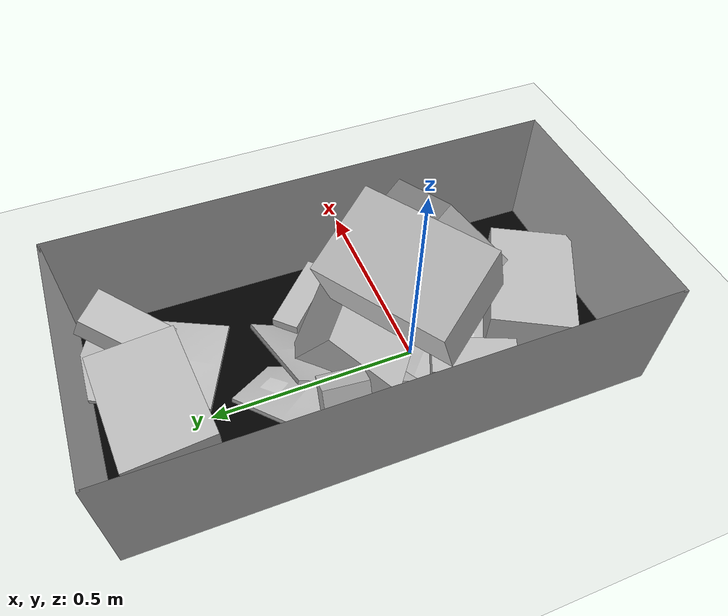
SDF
<sdf version="1.7">
 <world name="default">
  <model name="ground_plane">
   <static>1</static>
   <link name="link">
    <collision name="collision">
     <geometry><plane><normal>0 0 1</normal><size>100 100</size></plane></geometry>
     <surface><friction><ode><mu>100</mu><mu2>50</mu2></ode></friction></surface>
    </collision>
    <visual name="visual">
     <cast_shadows>0</cast_shadows>
     <geometry><plane><normal>0 0 1</normal><size>100 100</size></plane></geometry>
     <material>
      <script><uri>file://media/materials/scripts/gazebo.material</uri><name>Gazebo/Grey</name></script>
     </material>
    </visual>
   </link>
  </model>
  <model name="trolley">
   <static>1</static>
   <link name="link">
    <inertial>
     <mass>10</mass>
     <inertia><ixy>0</ixy><ixz>0</ixz><iyz>0</iyz><ixx>0.05288</ixx><iyy>0.05288</iyy><izz>0.09132</izz></inertia>
    </inertial>
    <collision name="collision">
     <geometry><mesh><uri>model://trolley/meshes/trolley.dae</uri></mesh></geometry>
    </collision>
    <visual name="visual">
     <geometry><mesh><uri>model://trolley/meshes/trolley.dae</uri><scale>1 1 1</scale></mesh></geometry>
     <meta><layer>1</layer></meta>
    </visual>
   </link>
   <pose>0.051238 0.131331 0.154361 0.000575 6e-06 3.13104</pose>
  </model>
  <model name="flyer_box_1">
   <link name="link">
    <inertial>
     <mass>1</mass>
     <inertia><ixy>0</ixy><ixz>0</ixz><iyz>0</iyz><ixx>0.05288</ixx><iyy>0.05288</iyy><izz>0.09132</izz></inertia>
    </inertial>
    <collision name="collision">
     <geometry><mesh><uri>model://flyer_boxes/meshes/flyer.dae</uri></mesh></geometry>
    </collision>
    <visual name="visual">
     <geometry><mesh><uri>model://flyer_boxes/meshes/flyer.dae</uri><scale>1 1 1</scale></mesh></geometry>
     <meta><layer>1</layer></meta>
    </visual>
   </link>
   <pose>-0.065278 0.544205 0.189091 0.086525 -0.04826 1.14085</pose>
  </model>
  <model name="medium_box_1">
   <link name="link">
    <inertial>
     <mass>1</mass>
     <inertia><ixy>0</ixy><ixz>0</ixz><iyz>0</iyz><ixx>0.05288</ixx><iyy>0.05288</iyy><izz>0.09132</izz></inertia>
    </inertial>
    <visual name="visual">
     <geometry><mesh><uri>model://medium_boxes/meshes/medium_box.dae</uri><scale>1 1 1</scale></mesh></geometry>
     <meta><layer>1</layer></meta>
     <material><shader type="pixel"><normal_map>__default__</normal_map></shader></material>
    </visual>
    <collision name="collision">
     <geometry><mesh><uri>model://medium_boxes/meshes/medium_box.dae</uri><scale>1 1 1</scale></mesh></geometry>
     <surface>
      <friction>
       <ode><mu>1</mu><mu2>1</mu2><fdir1>0 0 0</fdir1><slip1>0</slip1><slip2>0</slip2></ode>
       <torsional>
        <coefficient>1</coefficient>
        <patch_radius>0</patch_radius>
        <surface_radius>0</surface_radius>
        <use_patch_radius>1</use_patch_radius>
        <ode><slip>0</slip></ode>
       </torsional>
      </friction>
      <bounce><restitution_coefficient>0</restitution_coefficient><threshold>0</threshold></bounce>
      <contact>
       <collide_without_contact>0</collide_without_contact>
       <collide_without_contact_bitmask>1</collide_without_contact_bitmask>
       <collide_bitmask>1</collide_bitmask>
       <ode>
        <soft_cfm>0</soft_cfm>
        <soft_erp>0.2</soft_erp>
        <kp>100000</kp>
        <kd>1</kd>
        <max_vel>0.001</max_vel>
        <min_depth>0</min_depth>
       </ode>
       <bullet>
        <split_impulse>1</split_impulse>
        <split_impulse_penetration_threshold>-0.01</split_impulse_penetration_threshold>
        <soft_cfm>0</soft_cfm>
        <soft_erp>0.2</soft_erp>
        <kp>100000</kp>
        <kd>1</kd>
       </bullet>
      </contact>
     </surface>
    </collision>
   </link>
   <static>0</static>
   <pose>-0.023595 0.627467 0.111992 -0.000652 -2.6e-05 0.075371</pose>
  </model>
  <model name="medium_box_1_clone">
   <link name="link">
    <inertial>
     <mass>1</mass>
     <inertia><ixy>0</ixy><ixz>0</ixz><iyz>0</iyz><ixx>0.05288</ixx><iyy>0.05288</iyy><izz>0.09132</izz></inertia>
    </inertial>
    <visual name="visual">
     <geometry><mesh><uri>model://medium_boxes/meshes/medium_box.dae</uri><scale>1 1 1</scale></mesh></geometry>
     <meta><layer>1</layer></meta>
     <material><shader type="pixel"><normal_map>__default__</normal_map></shader></material>
    </visual>
    <collision name="collision">
     <geometry><mesh><uri>model://medium_boxes/meshes/medium_box.dae</uri><scale>1 1 1</scale></mesh></geometry>
     <surface>
      <friction>
       <ode><mu>1</mu><mu2>1</mu2><fdir1>0 0 0</fdir1><slip1>0</slip1><slip2>0</slip2></ode>
       <torsional>
        <coefficient>1</coefficient>
        <patch_radius>0</patch_radius>
        <surface_radius>0</surface_radius>
        <use_patch_radius>1</use_patch_radius>
        <ode><slip>0</slip></ode>
       </torsional>
      </friction>
      <bounce><restitution_coefficient>0</restitution_coefficient><threshold>0</threshold></bounce>
      <contact>
       <collide_without_contact>0</collide_without_contact>
       <collide_without_contact_bitmask>1</collide_without_contact_bitmask>
       <collide_bitmask>1</collide_bitmask>
       <ode>
        <soft_cfm>0</soft_cfm>
        <soft_erp>0.2</soft_erp>
        <kp>100000</kp>
        <kd>1</kd>
        <max_vel>0.001</max_vel>
        <min_depth>0</min_depth>
       </ode>
       <bullet>
        <split_impulse>1</split_impulse>
        <split_impulse_penetration_threshold>-0.01</split_impulse_penetration_threshold>
        <soft_cfm>0</soft_cfm>
        <soft_erp>0.2</soft_erp>
        <kp>100000</kp>
        <kd>1</kd>
       </bullet>
      </contact>
     </surface>
    </collision>
   </link>
   <static>0</static>
   <pose>0.022284 0.126716 0.147169 0.682596 -0.000434 -0.671831</pose>
  </model>
  <model name="medium_box_1_clone_0">
   <link name="link">
    <inertial>
     <mass>1</mass>
     <inertia><ixy>0</ixy><ixz>0</ixz><iyz>0</iyz><ixx>0.05288</ixx><iyy>0.05288</iyy><izz>0.09132</izz></inertia>
    </inertial>
    <visual name="visual">
     <geometry><mesh><uri>model://medium_boxes/meshes/medium_box.dae</uri><scale>1 1 1</scale></mesh></geometry>
     <meta><layer>1</layer></meta>
     <material><shader type="pixel"><normal_map>__default__</normal_map></shader></material>
    </visual>
    <collision name="collision">
     <geometry><mesh><uri>model://medium_boxes/meshes/medium_box.dae</uri><scale>1 1 1</scale></mesh></geometry>
     <surface>
      <friction>
       <ode><mu>1</mu><mu2>1</mu2><fdir1>0 0 0</fdir1><slip1>0</slip1><slip2>0</slip2></ode>
       <torsional>
        <coefficient>1</coefficient>
        <patch_radius>0</patch_radius>
        <surface_radius>0</surface_radius>
        <use_patch_radius>1</use_patch_radius>
        <ode><slip>0</slip></ode>
       </torsional>
      </friction>
      <bounce><restitution_coefficient>0</restitution_coefficient><threshold>0</threshold></bounce>
      <contact>
       <collide_without_contact>0</collide_without_contact>
       <collide_without_contact_bitmask>1</collide_without_contact_bitmask>
       <collide_bitmask>1</collide_bitmask>
       <ode>
        <soft_cfm>0</soft_cfm>
        <soft_erp>0.2</soft_erp>
        <kp>100000</kp>
        <kd>1</kd>
        <max_vel>0.001</max_vel>
        <min_depth>0</min_depth>
       </ode>
       <bullet>
        <split_impulse>1</split_impulse>
        <split_impulse_penetration_threshold>-0.01</split_impulse_penetration_threshold>
        <soft_cfm>0</soft_cfm>
        <soft_erp>0.2</soft_erp>
        <kp>100000</kp>
        <kd>1</kd>
       </bullet>
      </contact>
     </surface>
    </collision>
   </link>
   <static>0</static>
   <pose>0.016393 -0.30519 0.06748 0.012883 -3e-06 -0.504389</pose>
  </model>
  <model name="medium_box_1_clone_1">
   <link name="link">
    <inertial>
     <mass>1</mass>
     <inertia><ixy>0</ixy><ixz>0</ixz><iyz>0</iyz><ixx>0.05288</ixx><iyy>0.05288</iyy><izz>0.09132</izz></inertia>
    </inertial>
    <visual name="visual">
     <geometry><mesh><uri>model://medium_boxes/meshes/medium_box.dae</uri><scale>1 1 1</scale></mesh></geometry>
     <meta><layer>1</layer></meta>
     <material><shader type="pixel"><normal_map>__default__</normal_map></shader></material>
    </visual>
    <collision name="collision">
     <geometry><mesh><uri>model://medium_boxes/meshes/medium_box.dae</uri><scale>1 1 1</scale></mesh></geometry>
     <surface>
      <friction>
       <ode><mu>1</mu><mu2>1</mu2><fdir1>0 0 0</fdir1><slip1>0</slip1><slip2>0</slip2></ode>
       <torsional>
        <coefficient>1</coefficient>
        <patch_radius>0</patch_radius>
        <surface_radius>0</surface_radius>
        <use_patch_radius>1</use_patch_radius>
        <ode><slip>0</slip></ode>
       </torsional>
      </friction>
      <bounce><restitution_coefficient>0</restitution_coefficient><threshold>0</threshold></bounce>
      <contact>
       <collide_without_contact>0</collide_without_contact>
       <collide_without_contact_bitmask>1</collide_without_contact_bitmask>
       <collide_bitmask>1</collide_bitmask>
       <ode>
        <soft_cfm>0</soft_cfm>
        <soft_erp>0.2</soft_erp>
        <kp>100000</kp>
        <kd>1</kd>
        <max_vel>0.001</max_vel>
        <min_depth>0</min_depth>
       </ode>
       <bullet>
        <split_impulse>1</split_impulse>
        <split_impulse_penetration_threshold>-0.01</split_impulse_penetration_threshold>
        <soft_cfm>0</soft_cfm>
        <soft_erp>0.2</soft_erp>
        <kp>100000</kp>
        <kd>1</kd>
       </bullet>
      </contact>
     </surface>
    </collision>
   </link>
   <static>0</static>
   <pose>0.124887 -0.094592 0.172376 -2.23217 0.491541 -0.035487</pose>
  </model>
  <model name="medium_box_1_clone_2">
   <link name="link">
    <inertial>
     <mass>1</mass>
     <inertia><ixy>0</ixy><ixz>0</ixz><iyz>0</iyz><ixx>0.05288</ixx><iyy>0.05288</iyy><izz>0.09132</izz></inertia>
    </inertial>
    <visual name="visual">
     <geometry><mesh><uri>model://medium_boxes/meshes/medium_box.dae</uri><scale>1 1 1</scale></mesh></geometry>
     <meta><layer>1</layer></meta>
     <material><shader type="pixel"><normal_map>__default__</normal_map></shader></material>
    </visual>
    <collision name="collision">
     <geometry><mesh><uri>model://medium_boxes/meshes/medium_box.dae</uri><scale>1 1 1</scale></mesh></geometry>
     <surface>
      <friction>
       <ode><mu>1</mu><mu2>1</mu2><fdir1>0 0 0</fdir1><slip1>0</slip1><slip2>0</slip2></ode>
       <torsional>
        <coefficient>1</coefficient>
        <patch_radius>0</patch_radius>
        <surface_radius>0</surface_radius>
        <use_patch_radius>1</use_patch_radius>
        <ode><slip>0</slip></ode>
       </torsional>
      </friction>
      <bounce><restitution_coefficient>0</restitution_coefficient><threshold>0</threshold></bounce>
      <contact>
       <collide_without_contact>0</collide_without_contact>
       <collide_without_contact_bitmask>1</collide_without_contact_bitmask>
       <collide_bitmask>1</collide_bitmask>
       <ode>
        <soft_cfm>0</soft_cfm>
        <soft_erp>0.2</soft_erp>
        <kp>100000</kp>
        <kd>1</kd>
        <max_vel>0.001</max_vel>
        <min_depth>0</min_depth>
       </ode>
       <bullet>
        <split_impulse>1</split_impulse>
        <split_impulse_penetration_threshold>-0.01</split_impulse_penetration_threshold>
        <soft_cfm>0</soft_cfm>
        <soft_erp>0.2</soft_erp>
        <kp>100000</kp>
        <kd>1</kd>
       </bullet>
      </contact>
     </surface>
    </collision>
   </link>
   <static>0</static>
   <pose>-0.040395 0.071101 0.324959 -2.74159 0.006371 -2.57278</pose>
  </model>
  <model name="small_box_1">
   <link name="link">
    <inertial>
     <mass>0.72</mass>
     <inertia><ixy>0</ixy><ixz>0</ixz><iyz>0</iyz><ixx>0.05288</ixx><iyy>0.05288</iyy><izz>0.09132</izz></inertia>
    </inertial>
    <visual name="visual">
     <geometry><mesh><uri>model://small_boxes/meshes/small_box.dae</uri><scale>1 1 1</scale></mesh></geometry>
     <meta><layer>1</layer></meta>
     <material><shader type="pixel"><normal_map>__default__</normal_map></shader></material>
    </visual>
    <collision name="collision">
     <geometry><mesh><uri>model://small_boxes/meshes/small_box.dae</uri><scale>1 1 1</scale></mesh></geometry>
     <surface>
      <friction>
       <ode><mu>1000</mu><mu2>1000</mu2><fdir1>0 0 0</fdir1><slip1>0</slip1><slip2>0</slip2></ode>
       <torsional>
        <coefficient>1</coefficient>
        <patch_radius>0</patch_radius>
        <surface_radius>0</surface_radius>
        <use_patch_radius>1</use_patch_radius>
        <ode><slip>0</slip></ode>
       </torsional>
      </friction>
      <bounce><restitution_coefficient>0</restitution_coefficient><threshold>0</threshold></bounce>
      <contact>
       <collide_without_contact>0</collide_without_contact>
       <collide_without_contact_bitmask>1</collide_without_contact_bitmask>
       <collide_bitmask>1</collide_bitmask>
       <ode>
        <soft_cfm>0</soft_cfm>
        <soft_erp>0.2</soft_erp>
        <kp>1e+06</kp>
        <kd>1</kd>
        <max_vel>0.01</max_vel>
        <min_depth>0</min_depth>
       </ode>
       <bullet>
        <split_impulse>1</split_impulse>
        <split_impulse_penetration_threshold>-0.01</split_impulse_penetration_threshold>
        <soft_cfm>0</soft_cfm>
        <soft_erp>0.2</soft_erp>
        <kp>1e+06</kp>
        <kd>1</kd>
       </bullet>
      </contact>
     </surface>
    </collision>
   </link>
   <static>0</static>
   <pose>0.240085 0.618243 0.080277 -0.00038 -0.470169 0.921833</pose>
  </model>
  <model name="small_box_1_clone">
   <link name="link">
    <inertial>
     <mass>0.72</mass>
     <inertia><ixy>0</ixy><ixz>0</ixz><iyz>0</iyz><ixx>0.05288</ixx><iyy>0.05288</iyy><izz>0.09132</izz></inertia>
    </inertial>
    <visual name="visual">
     <geometry><mesh><uri>model://small_boxes/meshes/small_box.dae</uri><scale>1 1 1</scale></mesh></geometry>
     <meta><layer>1</layer></meta>
     <material><shader type="pixel"><normal_map>__default__</normal_map></shader></material>
    </visual>
    <collision name="collision">
     <geometry><mesh><uri>model://small_boxes/meshes/small_box.dae</uri><scale>1 1 1</scale></mesh></geometry>
     <surface>
      <friction>
       <ode><mu>1000</mu><mu2>1000</mu2><fdir1>0 0 0</fdir1><slip1>0</slip1><slip2>0</slip2></ode>
       <torsional>
        <coefficient>1</coefficient>
        <patch_radius>0</patch_radius>
        <surface_radius>0</surface_radius>
        <use_patch_radius>1</use_patch_radius>
        <ode><slip>0</slip></ode>
       </torsional>
      </friction>
      <bounce><restitution_coefficient>0</restitution_coefficient><threshold>0</threshold></bounce>
      <contact>
       <collide_without_contact>0</collide_without_contact>
       <collide_without_contact_bitmask>1</collide_without_contact_bitmask>
       <collide_bitmask>1</collide_bitmask>
       <ode>
        <soft_cfm>0</soft_cfm>
        <soft_erp>0.2</soft_erp>
        <kp>1e+06</kp>
        <kd>1</kd>
        <max_vel>0.01</max_vel>
        <min_depth>0</min_depth>
       </ode>
       <bullet>
        <split_impulse>1</split_impulse>
        <split_impulse_penetration_threshold>-0.01</split_impulse_penetration_threshold>
        <soft_cfm>0</soft_cfm>
        <soft_erp>0.2</soft_erp>
        <kp>1e+06</kp>
        <kd>1</kd>
       </bullet>
      </contact>
     </surface>
    </collision>
   </link>
   <static>0</static>
   <pose>-0.172055 0.227304 0.088662 3.14136 -1.13352 -0.098364</pose>
  </model>
  <model name="small_box_1_clone_0">
   <link name="link">
    <inertial>
     <mass>0.72</mass>
     <inertia><ixy>0</ixy><ixz>0</ixz><iyz>0</iyz><ixx>0.05288</ixx><iyy>0.05288</iyy><izz>0.09132</izz></inertia>
    </inertial>
    <visual name="visual">
     <geometry><mesh><uri>model://small_boxes/meshes/small_box.dae</uri><scale>1 1 1</scale></mesh></geometry>
     <meta><layer>1</layer></meta>
     <material><shader type="pixel"><normal_map>__default__</normal_map></shader></material>
    </visual>
    <collision name="collision">
     <geometry><mesh><uri>model://small_boxes/meshes/small_box.dae</uri><scale>1 1 1</scale></mesh></geometry>
     <surface>
      <friction>
       <ode><mu>1000</mu><mu2>1000</mu2><fdir1>0 0 0</fdir1><slip1>0</slip1><slip2>0</slip2></ode>
       <torsional>
        <coefficient>1</coefficient>
        <patch_radius>0</patch_radius>
        <surface_radius>0</surface_radius>
        <use_patch_radius>1</use_patch_radius>
        <ode><slip>0</slip></ode>
       </torsional>
      </friction>
      <bounce><restitution_coefficient>0</restitution_coefficient><threshold>0</threshold></bounce>
      <contact>
       <collide_without_contact>0</collide_without_contact>
       <collide_without_contact_bitmask>1</collide_without_contact_bitmask>
       <collide_bitmask>1</collide_bitmask>
       <ode>
        <soft_cfm>0</soft_cfm>
        <soft_erp>0.2</soft_erp>
        <kp>1e+06</kp>
        <kd>1</kd>
        <max_vel>0.01</max_vel>
        <min_depth>0</min_depth>
       </ode>
       <bullet>
        <split_impulse>1</split_impulse>
        <split_impulse_penetration_threshold>-0.01</split_impulse_penetration_threshold>
        <soft_cfm>0</soft_cfm>
        <soft_erp>0.2</soft_erp>
        <kp>1e+06</kp>
        <kd>1</kd>
       </bullet>
      </contact>
     </surface>
    </collision>
   </link>
   <static>0</static>
   <pose>-0.103673 -0.096643 0.021966 3.14098 -0.000607 -1.97827</pose>
  </model>
  <model name="small_box_1_clone_1">
   <link name="link">
    <inertial>
     <mass>0.72</mass>
     <inertia><ixy>0</ixy><ixz>0</ixz><iyz>0</iyz><ixx>0.05288</ixx><iyy>0.05288</iyy><izz>0.09132</izz></inertia>
    </inertial>
    <visual name="visual">
     <geometry><mesh><uri>model://small_boxes/meshes/small_box.dae</uri><scale>1 1 1</scale></mesh></geometry>
     <meta><layer>1</layer></meta>
     <material><shader type="pixel"><normal_map>__default__</normal_map></shader></material>
    </visual>
    <collision name="collision">
     <geometry><mesh><uri>model://small_boxes/meshes/small_box.dae</uri><scale>1 1 1</scale></mesh></geometry>
     <surface>
      <friction>
       <ode><mu>1000</mu><mu2>1000</mu2><fdir1>0 0 0</fdir1><slip1>0</slip1><slip2>0</slip2></ode>
       <torsional>
        <coefficient>1</coefficient>
        <patch_radius>0</patch_radius>
        <surface_radius>0</surface_radius>
        <use_patch_radius>1</use_patch_radius>
        <ode><slip>0</slip></ode>
       </torsional>
      </friction>
      <bounce><restitution_coefficient>0</restitution_coefficient><threshold>0</threshold></bounce>
      <contact>
       <collide_without_contact>0</collide_without_contact>
       <collide_without_contact_bitmask>1</collide_without_contact_bitmask>
       <collide_bitmask>1</collide_bitmask>
       <ode>
        <soft_cfm>0</soft_cfm>
        <soft_erp>0.2</soft_erp>
        <kp>1e+06</kp>
        <kd>1</kd>
        <max_vel>0.01</max_vel>
        <min_depth>0</min_depth>
       </ode>
       <bullet>
        <split_impulse>1</split_impulse>
        <split_impulse_penetration_threshold>-0.01</split_impulse_penetration_threshold>
        <soft_cfm>0</soft_cfm>
        <soft_erp>0.2</soft_erp>
        <kp>1e+06</kp>
        <kd>1</kd>
       </bullet>
      </contact>
     </surface>
    </collision>
   </link>
   <static>0</static>
   <pose>0.172575 0.208109 0.059917 1.57045 -0.000416 -0.772456</pose>
  </model>
  <model name="small_box_1_clone_2">
   <link name="link">
    <inertial>
     <mass>0.72</mass>
     <inertia><ixy>0</ixy><ixz>0</ixz><iyz>0</iyz><ixx>0.05288</ixx><iyy>0.05288</iyy><izz>0.09132</izz></inertia>
    </inertial>
    <visual name="visual">
     <geometry><mesh><uri>model://small_boxes/meshes/small_box.dae</uri><scale>1 1 1</scale></mesh></geometry>
     <meta><layer>1</layer></meta>
     <material><shader type="pixel"><normal_map>__default__</normal_map></shader></material>
    </visual>
    <collision name="collision">
     <geometry><mesh><uri>model://small_boxes/meshes/small_box.dae</uri><scale>1 1 1</scale></mesh></geometry>
     <surface>
      <friction>
       <ode><mu>1000</mu><mu2>1000</mu2><fdir1>0 0 0</fdir1><slip1>0</slip1><slip2>0</slip2></ode>
       <torsional>
        <coefficient>1</coefficient>
        <patch_radius>0</patch_radius>
        <surface_radius>0</surface_radius>
        <use_patch_radius>1</use_patch_radius>
        <ode><slip>0</slip></ode>
       </torsional>
      </friction>
      <bounce><restitution_coefficient>0</restitution_coefficient><threshold>0</threshold></bounce>
      <contact>
       <collide_without_contact>0</collide_without_contact>
       <collide_without_contact_bitmask>1</collide_without_contact_bitmask>
       <collide_bitmask>1</collide_bitmask>
       <ode>
        <soft_cfm>0</soft_cfm>
        <soft_erp>0.2</soft_erp>
        <kp>1e+06</kp>
        <kd>1</kd>
        <max_vel>0.01</max_vel>
        <min_depth>0</min_depth>
       </ode>
       <bullet>
        <split_impulse>1</split_impulse>
        <split_impulse_penetration_threshold>-0.01</split_impulse_penetration_threshold>
        <soft_cfm>0</soft_cfm>
        <soft_erp>0.2</soft_erp>
        <kp>1e+06</kp>
        <kd>1</kd>
       </bullet>
      </contact>
     </surface>
    </collision>
   </link>
   <static>0</static>
   <pose>-0.198184 -0.082663 0.048024 -1.59447 0.010981 -1.68771</pose>
  </model>
  <model name="flyer_box_1_clone">
   <link name="link">
    <inertial>
     <mass>1</mass>
     <inertia><ixy>0</ixy><ixz>0</ixz><iyz>0</iyz><ixx>0.05288</ixx><iyy>0.05288</iyy><izz>0.09132</izz></inertia>
    </inertial>
    <collision name="collision">
     <geometry><mesh><uri>model://flyer_boxes/meshes/flyer.dae</uri></mesh></geometry>
    </collision>
    <visual name="visual">
     <geometry><mesh><uri>model://flyer_boxes/meshes/flyer.dae</uri><scale>1 1 1</scale></mesh></geometry>
     <meta><layer>1</layer></meta>
    </visual>
   </link>
   <pose>-0.13366 -0.02407 0.171034 0.345046 -0.501029 1.56036</pose>
  </model>
  <model name="flyer_box_1_clone_0">
   <link name="link">
    <inertial>
     <mass>1</mass>
     <inertia><ixy>0</ixy><ixz>0</ixz><iyz>0</iyz><ixx>0.05288</ixx><iyy>0.05288</iyy><izz>0.09132</izz></inertia>
    </inertial>
    <collision name="collision">
     <geometry><mesh><uri>model://flyer_boxes/meshes/flyer.dae</uri></mesh></geometry>
    </collision>
    <visual name="visual">
     <geometry><mesh><uri>model://flyer_boxes/meshes/flyer.dae</uri><scale>1 1 1</scale></mesh></geometry>
     <meta><layer>1</layer></meta>
    </visual>
   </link>
   <pose>-0.050029 -0.276728 0.144322 0.066109 -0.0486 2.37594</pose>
  </model>
  <model name="flyer_box_1_clone_1">
   <link name="link">
    <inertial>
     <mass>1</mass>
     <inertia><ixy>0</ixy><ixz>0</ixz><iyz>0</iyz><ixx>0.05288</ixx><iyy>0.05288</iyy><izz>0.09132</izz></inertia>
    </inertial>
    <collision name="collision">
     <geometry><mesh><uri>model://flyer_boxes/meshes/flyer.dae</uri></mesh></geometry>
    </collision>
    <visual name="visual">
     <geometry><mesh><uri>model://flyer_boxes/meshes/flyer.dae</uri><scale>1 1 1</scale></mesh></geometry>
     <meta><layer>1</layer></meta>
    </visual>
   </link>
   <pose>0.145634 -0.194132 0.090656 0.732498 0.000763 2.38664</pose>
  </model>
  <model name="flyer_box_1_clone_2">
   <link name="link">
    <inertial>
     <mass>1</mass>
     <inertia><ixy>0</ixy><ixz>0</ixz><iyz>0</iyz><ixx>0.05288</ixx><iyy>0.05288</iyy><izz>0.09132</izz></inertia>
    </inertial>
    <collision name="collision">
     <geometry><mesh><uri>model://flyer_boxes/meshes/flyer.dae</uri></mesh></geometry>
    </collision>
    <visual name="visual">
     <geometry><mesh><uri>model://flyer_boxes/meshes/flyer.dae</uri><scale>1 1 1</scale></mesh></geometry>
     <meta><layer>1</layer></meta>
    </visual>
   </link>
   <pose>0.103386 0.445562 0.171093 -0.027348 0.404172 -0.851004</pose>
  </model>
 </world>
</sdf>
